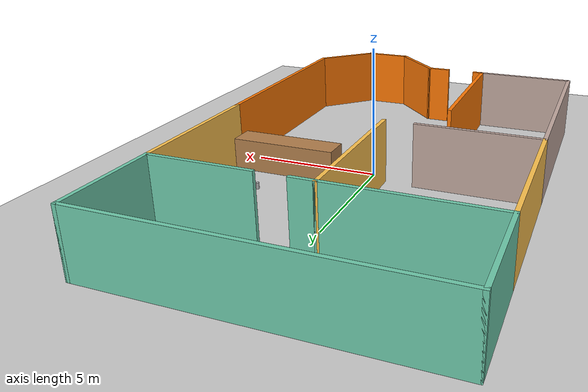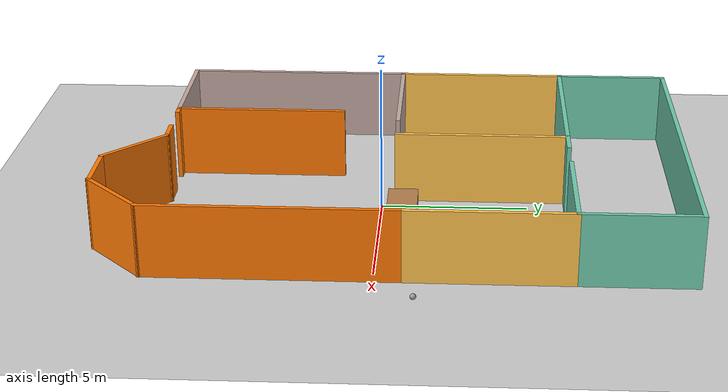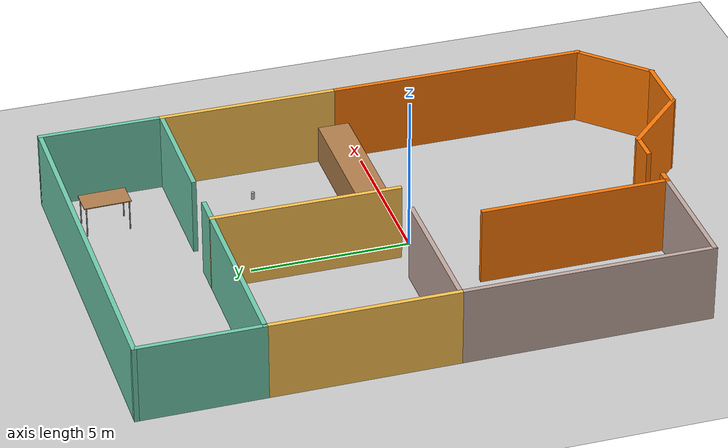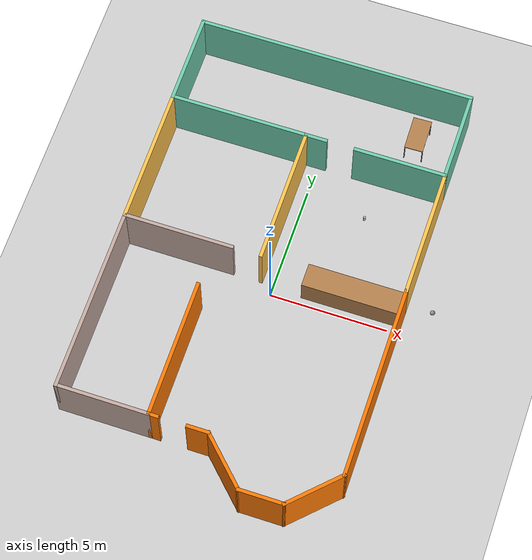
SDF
<sdf version="1.7">
 <world name="default">
  <model name="ground_plane">
   <static>1</static>
   <link name="link">
    <collision name="collision">
     <geometry><plane><normal>0 0 1</normal><size>100 100</size></plane></geometry>
     <surface>
      <contact><collide_bitmask>65535</collide_bitmask></contact>
      <friction><ode><mu>100</mu><mu2>50</mu2></ode></friction>
     </surface>
    </collision>
    <visual name="visual">
     <cast_shadows>0</cast_shadows>
     <geometry><plane><normal>0 0 1</normal><size>100 100</size></plane></geometry>
     <material>
      <script><uri>file://media/materials/scripts/gazebo.material</uri><name>Gazebo/Grey</name></script>
     </material>
    </visual>
   </link>
  </model>
  <model name="Model">
   <pose>-0.460298 0.47343 0 0 -0 0</pose>
   <link name="Wall_0">
    <collision name="Wall_0_Collision">
     <geometry><box><size>12 0.15 2.5</size></box></geometry>
     <pose>0 0 1.25 0 -0 0</pose>
    </collision>
    <visual name="Wall_0_Visual">
     <pose>0 0 1.25 0 -0 0</pose>
     <geometry><box><size>12 0.15 2.5</size></box></geometry>
     <material>
      <script><uri>file://media/materials/scripts/gazebo.material</uri><name>Gazebo/Grey</name></script>
      <ambient>0.435294 0.796078 0.67451 1</ambient>
     </material>
     <meta><layer>0</layer></meta>
    </visual>
    <pose>-0.015533 9.70977 0 0 -0 0</pose>
   </link>
   <link name="Wall_11">
    <collision name="Wall_11_Collision">
     <geometry><box><size>4 0.15 2.5</size></box></geometry>
     <pose>0 0 1.25 0 -0 0</pose>
    </collision>
    <visual name="Wall_11_Visual">
     <pose>0 0 1.25 0 -0 0</pose>
     <geometry><box><size>4 0.15 2.5</size></box></geometry>
     <material>
      <script><uri>file://media/materials/scripts/gazebo.material</uri><name>Gazebo/Grey</name></script>
      <ambient>0.435294 0.796078 0.67451 1</ambient>
     </material>
     <meta><layer>0</layer></meta>
    </visual>
    <pose>5.90947 7.78477 0 0 -0 -1.5708</pose>
   </link>
   <link name="Wall_12">
    <collision name="Wall_12_Collision">
     <geometry><box><size>4 0.15 2.5</size></box></geometry>
     <pose>0 0 1.25 0 -0 0</pose>
    </collision>
    <visual name="Wall_12_Visual">
     <pose>0 0 1.25 0 -0 0</pose>
     <geometry><box><size>4 0.15 2.5</size></box></geometry>
     <material>
      <script><uri>file://media/materials/scripts/gazebo.material</uri><name>Gazebo/Grey</name></script>
      <ambient>0.435294 0.796078 0.67451 1</ambient>
     </material>
     <meta><layer>0</layer></meta>
    </visual>
    <pose>3.98447 5.85977 0 0 -0 3.14159</pose>
   </link>
   <link name="Wall_14">
    <collision name="Wall_14_Collision">
     <geometry><box><size>5.65274 0.15 2.5</size></box></geometry>
     <pose>0 0 1.25 0 -0 0</pose>
    </collision>
    <visual name="Wall_14_Visual">
     <pose>0 0 1.25 0 -0 0</pose>
     <geometry><box><size>5.65274 0.15 2.5</size></box></geometry>
     <material>
      <script><uri>file://media/materials/scripts/gazebo.material</uri><name>Gazebo/Grey</name></script>
      <ambient>1 0.764706 0.305882 1</ambient>
     </material>
     <meta><layer>0</layer></meta>
    </visual>
    <pose>5.90938 3.10857 0 0 -0 -1.57083</pose>
   </link>
   <link name="Wall_17">
    <collision name="Wall_17_Collision">
     <geometry><box><size>8 0.15 2.5</size></box></geometry>
     <pose>0 0 1.25 0 -0 0</pose>
    </collision>
    <visual name="Wall_17_Visual">
     <pose>0 0 1.25 0 -0 0</pose>
     <geometry><box><size>8 0.15 2.5</size></box></geometry>
     <material>
      <script><uri>file://media/materials/scripts/gazebo.material</uri><name>Gazebo/Grey</name></script>
      <ambient>0.760784 0.662745 0.627451 1</ambient>
     </material>
     <meta><layer>0</layer></meta>
    </visual>
    <pose>-5.94053 -3.91523 0 0 -0 -1.5708</pose>
   </link>
   <link name="Wall_18">
    <collision name="Wall_18_Collision">
     <geometry><box><size>4 0.15 2.5</size></box></geometry>
     <pose>0 0 1.25 0 -0 0</pose>
    </collision>
    <visual name="Wall_18_Visual">
     <pose>0 0 1.25 0 -0 0</pose>
     <geometry><box><size>4 0.15 2.5</size></box></geometry>
     <material>
      <script><uri>file://media/materials/scripts/gazebo.material</uri><name>Gazebo/Grey</name></script>
      <ambient>0.760784 0.662745 0.627451 1</ambient>
     </material>
     <meta><layer>0</layer></meta>
    </visual>
    <pose>-4.01553 -7.84023 0 0 -0 0</pose>
   </link>
   <link name="Wall_19">
    <collision name="Wall_19_Collision">
     <geometry><box><size>6 0.15 2.5</size></box></geometry>
     <pose>0 0 1.25 0 -0 0</pose>
    </collision>
    <visual name="Wall_19_Visual">
     <pose>0 0 1.25 0 -0 0</pose>
     <geometry><box><size>6 0.15 2.5</size></box></geometry>
     <material>
      <script><uri>file://media/materials/scripts/gazebo.material</uri><name>Gazebo/Grey</name></script>
      <ambient>0.996078 0.47451 0.0196078 1</ambient>
     </material>
     <meta><layer>0</layer></meta>
    </visual>
    <pose>-2.09053 -4.91523 0 0 -0 1.5708</pose>
   </link>
   <link name="Wall_2">
    <collision name="Wall_2_Collision">
     <geometry><box><size>4 0.15 2.5</size></box></geometry>
     <pose>0 0 1.25 0 -0 0</pose>
    </collision>
    <visual name="Wall_2_Visual">
     <pose>0 0 1.25 0 -0 0</pose>
     <geometry><box><size>4 0.15 2.5</size></box></geometry>
     <material>
      <script><uri>file://media/materials/scripts/gazebo.material</uri><name>Gazebo/Grey</name></script>
      <ambient>0.435294 0.796078 0.67451 1</ambient>
     </material>
     <meta><layer>0</layer></meta>
    </visual>
    <pose>-5.94053 7.78477 0 0 -0 -1.5708</pose>
   </link>
   <link name="Wall_22">
    <collision name="Wall_22_Collision">
     <geometry><box><size>8.34781 0.15 2.5</size></box></geometry>
     <pose>0 0 1.25 0 -0 0</pose>
    </collision>
    <visual name="Wall_22_Visual">
     <pose>0 0 1.25 0 -0 0</pose>
     <geometry><box><size>8.34781 0.15 2.5</size></box></geometry>
     <material>
      <script><uri>file://media/materials/scripts/gazebo.material</uri><name>Gazebo/Grey</name></script>
      <ambient>0.996078 0.47451 0.0196078 1</ambient>
     </material>
     <meta><layer>0</layer></meta>
    </visual>
    <pose>5.90938 -3.74143 0 0 -0 -1.57078</pose>
   </link>
   <link name="Wall_23">
    <collision name="Wall_23_Collision">
     <geometry><box><size>2.75 0.15 2.5</size></box></geometry>
     <pose>0 0 1.25 0 -0 0</pose>
    </collision>
    <visual name="Wall_23_Visual">
     <pose>0 0 1.25 0 -0 0</pose>
     <geometry><box><size>2.75 0.15 2.5</size></box></geometry>
     <material>
      <script><uri>file://media/materials/scripts/gazebo.material</uri><name>Gazebo/Grey</name></script>
      <ambient>0.996078 0.47451 0.0196078 1</ambient>
     </material>
     <meta><layer>0</layer></meta>
    </visual>
    <pose>4.99023 -8.75947 0 0 -0 -2.35619</pose>
   </link>
   <link name="Wall_24">
    <collision name="Wall_24_Collision">
     <geometry><box><size>2 0.15 2.5</size></box></geometry>
     <pose>0 0 1.25 0 -0 0</pose>
    </collision>
    <visual name="Wall_24_Visual">
     <pose>0 0 1.25 0 -0 0</pose>
     <geometry><box><size>2 0.15 2.5</size></box></geometry>
     <material>
      <script><uri>file://media/materials/scripts/gazebo.material</uri><name>Gazebo/Grey</name></script>
      <ambient>0.996078 0.47451 0.0196078 1</ambient>
     </material>
     <meta><layer>0</layer></meta>
    </visual>
    <pose>3.14599 -9.67871 0 0 -0 3.14159</pose>
   </link>
   <link name="Wall_25">
    <collision name="Wall_25_Collision">
     <geometry><box><size>2.75 0.15 2.5</size></box></geometry>
     <pose>0 0 1.25 0 -0 0</pose>
    </collision>
    <visual name="Wall_25_Visual">
     <pose>0 0 1.25 0 -0 0</pose>
     <geometry><box><size>2.75 0.15 2.5</size></box></geometry>
     <material>
      <script><uri>file://media/materials/scripts/gazebo.material</uri><name>Gazebo/Grey</name></script>
      <ambient>0.996078 0.47451 0.0196078 1</ambient>
     </material>
     <meta><layer>0</layer></meta>
    </visual>
    <pose>1.30175 -8.75947 0 0 -0 2.35619</pose>
   </link>
   <link name="Wall_26">
    <collision name="Wall_26_Collision">
     <geometry><box><size>1 0.15 2.5</size></box></geometry>
     <pose>0 0 1.25 0 -0 0</pose>
    </collision>
    <visual name="Wall_26_Visual">
     <pose>0 0 1.25 0 -0 0</pose>
     <geometry><box><size>1 0.15 2.5</size></box></geometry>
     <material>
      <script><uri>file://media/materials/scripts/gazebo.material</uri><name>Gazebo/Grey</name></script>
      <ambient>0.996078 0.47451 0.0196078 1</ambient>
     </material>
     <meta><layer>0</layer></meta>
    </visual>
    <pose>-0.042488 -7.84023 0 0 -0 3.14159</pose>
   </link>
   <link name="Wall_28">
    <collision name="Wall_28_Collision">
     <geometry><box><size>0.5 0.15 2.5</size></box></geometry>
     <pose>0 0 1.25 0 -0 0</pose>
    </collision>
    <visual name="Wall_28_Visual">
     <pose>0 0 1.25 0 -0 0</pose>
     <geometry><box><size>0.5 0.15 2.5</size></box></geometry>
     <material>
      <script><uri>file://media/materials/scripts/gazebo.material</uri><name>Gazebo/Grey</name></script>
      <ambient>0.996078 0.47451 0.0196078 1</ambient>
     </material>
     <meta><layer>0</layer></meta>
    </visual>
    <pose>-1.91553 -7.84023 0 0 -0 0</pose>
   </link>
   <link name="Wall_3">
    <collision name="Wall_3_Collision">
     <geometry><box><size>6 0.15 2.5</size></box></geometry>
     <pose>0 0 1.25 0 -0 0</pose>
    </collision>
    <visual name="Wall_3_Visual">
     <pose>0 0 1.25 0 -0 0</pose>
     <geometry><box><size>6 0.15 2.5</size></box></geometry>
     <material>
      <script><uri>file://media/materials/scripts/gazebo.material</uri><name>Gazebo/Grey</name></script>
      <ambient>0.435294 0.796078 0.67451 1</ambient>
     </material>
     <meta><layer>0</layer></meta>
    </visual>
    <pose>-3.01553 5.85977 0 0 -0 0</pose>
   </link>
   <link name="Wall_31">
    <collision name="Wall_31_Collision">
     <geometry><box><size>4.25 1 1.25</size></box></geometry>
     <pose>0 0 0.625 0 -0 0</pose>
    </collision>
    <visual name="Wall_31_Visual">
     <pose>0 0 0.625 0 -0 0</pose>
     <geometry><box><size>4.25 1 1.25</size></box></geometry>
     <material>
      <script><uri>file://media/materials/scripts/gazebo.material</uri><name>Gazebo/Wood</name></script>
      <ambient>1 1 1 1</ambient>
     </material>
     <meta><layer>0</layer></meta>
    </visual>
    <pose>3.8083 0.326538 0 0 -0 0</pose>
   </link>
   <link name="Wall_4">
    <collision name="Wall_4_Collision">
     <geometry><box><size>5.9849 0.15 2.5</size></box></geometry>
     <pose>0 0 1.25 0 -0 0</pose>
    </collision>
    <visual name="Wall_4_Visual">
     <pose>0 0 1.25 0 -0 0</pose>
     <geometry><box><size>5.9849 0.15 2.5</size></box></geometry>
     <material>
      <script><uri>file://media/materials/scripts/gazebo.material</uri><name>Gazebo/Grey</name></script>
      <ambient>1 0.764706 0.305882 1</ambient>
     </material>
     <meta><layer>0</layer></meta>
    </visual>
    <pose>-0.098094 2.94233 0 0 -0 -1.57339</pose>
   </link>
   <link name="Wall_6">
    <collision name="Wall_6_Collision">
     <geometry><box><size>6 0.15 2.5</size></box></geometry>
     <pose>0 0 1.25 0 -0 0</pose>
    </collision>
    <visual name="Wall_6_Visual">
     <pose>0 0 1.25 0 -0 0</pose>
     <geometry><box><size>6 0.15 2.5</size></box></geometry>
     <material>
      <script><uri>file://media/materials/scripts/gazebo.material</uri><name>Gazebo/Grey</name></script>
      <ambient>1 0.764706 0.305882 1</ambient>
     </material>
     <meta><layer>0</layer></meta>
    </visual>
    <pose>-5.94053 2.93477 0 0 -0 -1.5708</pose>
   </link>
   <link name="Wall_7">
    <collision name="Wall_7_Collision">
     <geometry><box><size>4.75 0.15 2.5</size></box></geometry>
     <pose>0 0 1.25 0 -0 0</pose>
    </collision>
    <visual name="Wall_7_Visual">
     <pose>0 0 1.25 0 -0 0</pose>
     <geometry><box><size>4.75 0.15 2.5</size></box></geometry>
     <material>
      <script><uri>file://media/materials/scripts/gazebo.material</uri><name>Gazebo/Grey</name></script>
      <ambient>0.760784 0.662745 0.627451 1</ambient>
     </material>
     <meta><layer>0</layer></meta>
    </visual>
    <pose>-3.64053 0.009772 0 0 -0 0</pose>
   </link>
   <link name="Wall_9">
    <collision name="Wall_9_Collision">
     <geometry><box><size>1 0.15 2.5</size></box></geometry>
     <pose>0 0 1.25 0 -0 0</pose>
    </collision>
    <visual name="Wall_9_Visual">
     <pose>0 0 1.25 0 -0 0</pose>
     <geometry><box><size>1 0.15 2.5</size></box></geometry>
     <material>
      <script><uri>file://media/materials/scripts/gazebo.material</uri><name>Gazebo/Grey</name></script>
      <ambient>0.435294 0.796078 0.67451 1</ambient>
     </material>
     <meta><layer>0</layer></meta>
    </visual>
    <pose>0.334467 5.85977 0 0 -0 0</pose>
   </link>
   <static>1</static>
  </model>
  <model name="beer">
   <link name="link">
    <pose>0 0 0.115 0 -0 0</pose>
    <inertial>
     <mass>0.39</mass>
     <inertia><ixx>0.00058</ixx><ixy>0</ixy><ixz>0</ixz><iyy>0.00058</iyy><iyz>0</iyz><izz>0.00019</izz></inertia>
    </inertial>
    <collision name="collision">
     <geometry><cylinder><radius>0.055</radius><length>0.23</length></cylinder></geometry>
    </collision>
    <visual name="visual">
     <geometry><cylinder><radius>0.055</radius><length>0.23</length></cylinder></geometry>
     <material>
      <script>
       <uri>model://beer/materials/scripts</uri>
       <uri>model://beer/materials/textures</uri>
       <name>Beer/Diffuse</name>
      </script>
     </material>
    </visual>
   </link>
   <pose>2.71473 4.1849 0.775001 -1.1e-05 2.4e-05 0.005039</pose>
  </model>
  <model name="table_0">
   <static>1</static>
   <link name="link">
    <collision name="surface">
     <pose>0 0 1 0 -0 0</pose>
     <geometry><box><size>1.5 0.8 0.03</size></box></geometry>
     <surface><friction><ode><mu>0.6</mu><mu2>0.6</mu2></ode></friction></surface>
    </collision>
    <visual name="visual1">
     <pose>0 0 1 0 -0 0</pose>
     <geometry><box><size>1.5 0.8 0.03</size></box></geometry>
     <material>
      <script><uri>file://media/materials/scripts/gazebo.material</uri><name>Gazebo/Wood</name></script>
     </material>
    </visual>
    <collision name="front_left_leg">
     <pose>0.68 0.38 0.5 0 -0 0</pose>
     <geometry><cylinder><radius>0.02</radius><length>1</length></cylinder></geometry>
    </collision>
    <visual name="front_left_leg">
     <pose>0.68 0.38 0.5 0 -0 0</pose>
     <geometry><cylinder><radius>0.02</radius><length>1</length></cylinder></geometry>
     <material>
      <script><uri>file://media/materials/scripts/gazebo.material</uri><name>Gazebo/Grey</name></script>
     </material>
    </visual>
    <collision name="front_right_leg">
     <pose>0.68 -0.38 0.5 0 -0 0</pose>
     <geometry><cylinder><radius>0.02</radius><length>1</length></cylinder></geometry>
    </collision>
    <visual name="front_right_leg">
     <pose>0.68 -0.38 0.5 0 -0 0</pose>
     <geometry><cylinder><radius>0.02</radius><length>1</length></cylinder></geometry>
     <material>
      <script><uri>file://media/materials/scripts/gazebo.material</uri><name>Gazebo/Grey</name></script>
     </material>
    </visual>
    <collision name="back_right_leg">
     <pose>-0.68 -0.38 0.5 0 -0 0</pose>
     <geometry><cylinder><radius>0.02</radius><length>1</length></cylinder></geometry>
    </collision>
    <visual name="back_right_leg">
     <pose>-0.68 -0.38 0.5 0 -0 0</pose>
     <geometry><cylinder><radius>0.02</radius><length>1</length></cylinder></geometry>
     <material>
      <script><uri>file://media/materials/scripts/gazebo.material</uri><name>Gazebo/Grey</name></script>
     </material>
    </visual>
    <collision name="back_left_leg">
     <pose>-0.68 0.38 0.5 0 -0 0</pose>
     <geometry><cylinder><radius>0.02</radius><length>1</length></cylinder></geometry>
    </collision>
    <visual name="back_left_leg">
     <pose>-0.68 0.38 0.5 0 -0 0</pose>
     <geometry><cylinder><radius>0.02</radius><length>1</length></cylinder></geometry>
     <material>
      <script><uri>file://media/materials/scripts/gazebo.material</uri><name>Gazebo/Grey</name></script>
     </material>
    </visual>
   </link>
   <pose>3.70775 8.62749 0 0 -0 1.59276</pose>
  </model>
  <model name="my_ball">
   <link name="link_0">
    <inertial>
     <mass>1</mass>
     <inertia><ixx>0.1</ixx><ixy>0</ixy><ixz>0</ixz><iyy>0.1</iyy><iyz>0</iyz><izz>0.1</izz></inertia>
    </inertial>
    <visual name="visual">
     <geometry><sphere><radius>0.1</radius></sphere></geometry>
     <material>
      <lighting>1</lighting>
      <script><uri>file://media/materials/scripts/gazebo.material</uri><name>Gazebo/Grey</name></script>
      <shader type="pixel"><normal_map>__default__</normal_map></shader>
      <ambient>1 1 1 1</ambient>
      <diffuse>1 1 1 1</diffuse>
      <specular>1 1 1 1</specular>
      <emissive>1 1 1 1</emissive>
     </material>
    </visual>
    <collision name="collision">
     <geometry><sphere><radius>0.1</radius></sphere></geometry>
     <surface>
      <friction>
       <ode><mu>1</mu><mu2>1</mu2><fdir1>0 0 0</fdir1><slip1>0</slip1><slip2>0</slip2></ode>
       <torsional>
        <coefficient>1</coefficient>
        <patch_radius>0</patch_radius>
        <surface_radius>0</surface_radius>
        <use_patch_radius>1</use_patch_radius>
        <ode><slip>0</slip></ode>
       </torsional>
      </friction>
      <bounce><restitution_coefficient>0</restitution_coefficient><threshold>1e+06</threshold></bounce>
      <contact>
       <collide_without_contact>0</collide_without_contact>
       <collide_without_contact_bitmask>1</collide_without_contact_bitmask>
       <collide_bitmask>1</collide_bitmask>
       <ode>
        <soft_cfm>0</soft_cfm>
        <soft_erp>0.2</soft_erp>
        <kp>1e+13</kp>
        <kd>1</kd>
        <max_vel>0.01</max_vel>
        <min_depth>0</min_depth>
       </ode>
       <bullet>
        <split_impulse>1</split_impulse>
        <split_impulse_penetration_threshold>-0.01</split_impulse_penetration_threshold>
        <soft_cfm>0</soft_cfm>
        <soft_erp>0.2</soft_erp>
        <kp>1e+13</kp>
        <kd>1</kd>
       </bullet>
      </contact>
     </surface>
    </collision>
   </link>
   <static>0</static>
   <pose>6.57266 1.31367 0.1 0 -0 0</pose>
  </model>
 </world>
</sdf>
